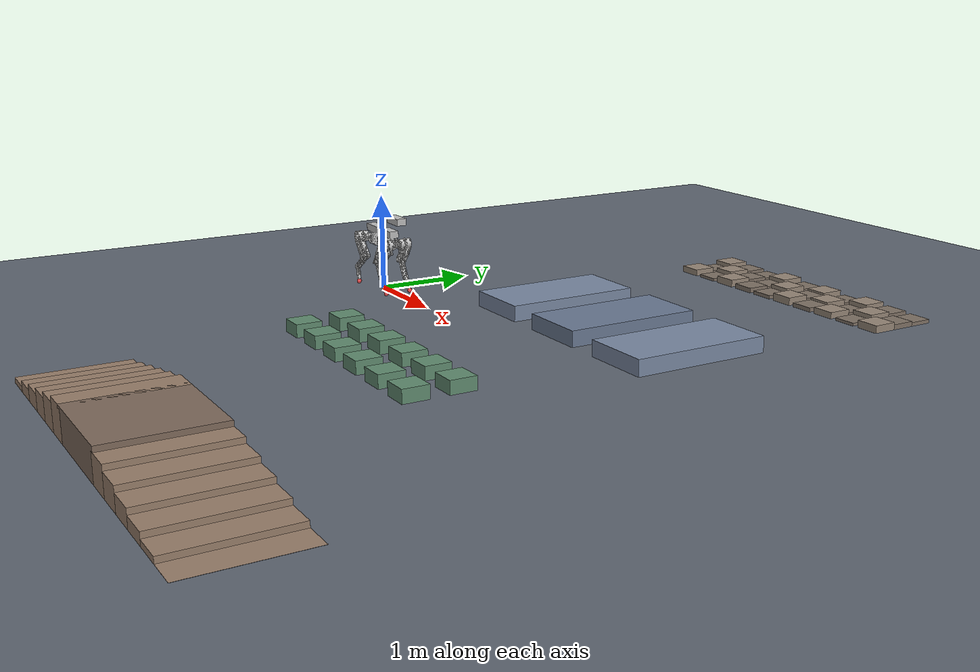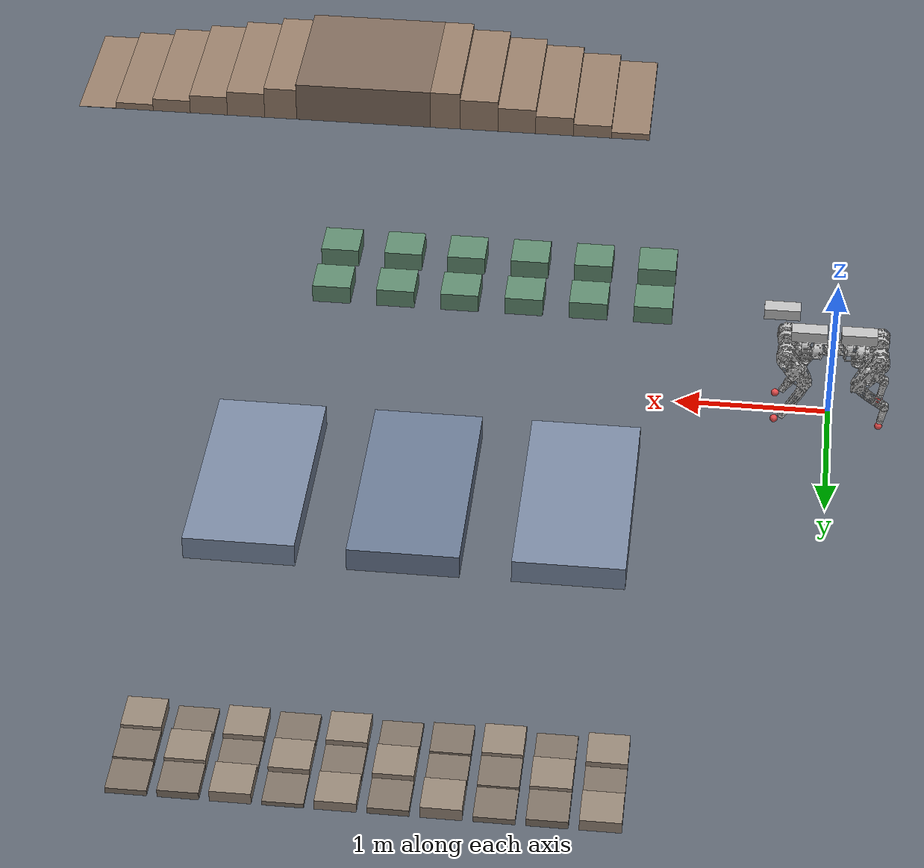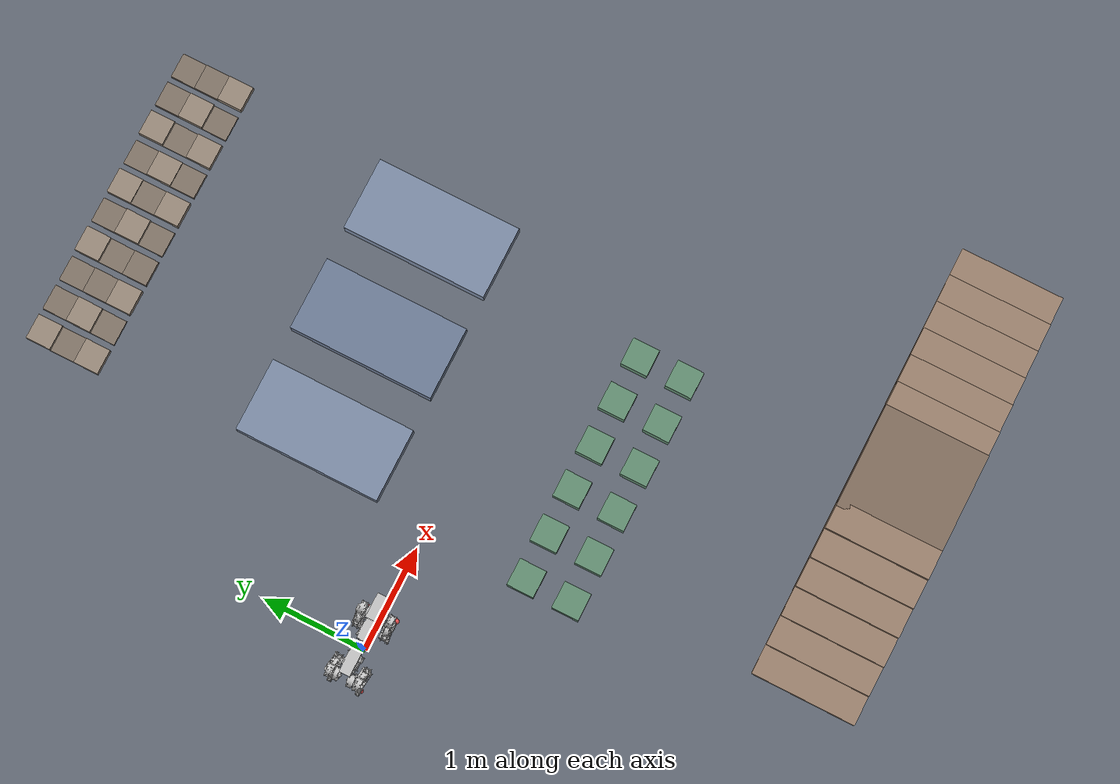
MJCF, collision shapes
<mujoco model="terrain_course4">
  <!-- ★4라인 종합코스(2026-07-15): gap·stepping을 별도 라인 분리 + 험지·계단 복원.
       y=+1.2 갭 / y=-1.2 스테핑(안쪽=도달 쉬움) · y=+3.6 험지 / y=-3.6 계단(바깥). 중앙(y=0)=통로.
       ③ selectFoot walk 0.5로 각 라인 완주. 조향해 라인 진입. -->
  <include file="quad_real_17dof_waist_sphere.mjcf"/>
  <worldbody>
    <!-- 라인 A (y=+1.2): 갭 GAP -->
    <geom name="gp0" type="box" group="2" size="0.350 0.700 0.080" pos="1.550 1.200 0.080" rgba="0.48 0.54 0.64 1"/>
    <geom name="gp1" type="box" group="2" size="0.350 0.700 0.080" pos="2.570 1.200 0.080" rgba="0.42 0.48 0.58 1"/>
    <geom name="gp2" type="box" group="2" size="0.350 0.700 0.080" pos="3.590 1.200 0.080" rgba="0.48 0.54 0.64 1"/>
    <!-- 라인 B (y=-1.2): 스테핑 STEPPING -->
    <geom name="t0L" type="box" group="2" size="0.130 0.130 0.065" pos="1.200 -0.980 0.065" rgba="0.38 0.55 0.44 1"/>
    <geom name="t0R" type="box" group="2" size="0.130 0.130 0.065" pos="1.200 -1.420 0.065" rgba="0.38 0.55 0.44 1"/>
    <geom name="t1L" type="box" group="2" size="0.130 0.130 0.065" pos="1.640 -0.980 0.065" rgba="0.38 0.55 0.44 1"/>
    <geom name="t1R" type="box" group="2" size="0.130 0.130 0.065" pos="1.640 -1.420 0.065" rgba="0.38 0.55 0.44 1"/>
    <geom name="t2L" type="box" group="2" size="0.130 0.130 0.065" pos="2.080 -0.980 0.065" rgba="0.38 0.55 0.44 1"/>
    <geom name="t2R" type="box" group="2" size="0.130 0.130 0.065" pos="2.080 -1.420 0.065" rgba="0.38 0.55 0.44 1"/>
    <geom name="t3L" type="box" group="2" size="0.130 0.130 0.065" pos="2.520 -0.980 0.065" rgba="0.38 0.55 0.44 1"/>
    <geom name="t3R" type="box" group="2" size="0.130 0.130 0.065" pos="2.520 -1.420 0.065" rgba="0.38 0.55 0.44 1"/>
    <geom name="t4L" type="box" group="2" size="0.130 0.130 0.065" pos="2.960 -0.980 0.065" rgba="0.38 0.55 0.44 1"/>
    <geom name="t4R" type="box" group="2" size="0.130 0.130 0.065" pos="2.960 -1.420 0.065" rgba="0.38 0.55 0.44 1"/>
    <geom name="t5L" type="box" group="2" size="0.130 0.130 0.065" pos="3.400 -0.980 0.065" rgba="0.38 0.55 0.44 1"/>
    <geom name="t5R" type="box" group="2" size="0.130 0.130 0.065" pos="3.400 -1.420 0.065" rgba="0.38 0.55 0.44 1"/>
    <!-- 라인 C (y=+3.6): 험지 ROUGH (0.12 요철 그리드, 높이 0.015~0.040) -->
    <geom name="rg0" type="box" group="2" size="0.120 0.120 0.033" pos="1.200 3.360 0.033" rgba="0.59 0.53 0.47 1"/>
    <geom name="rg1" type="box" group="2" size="0.120 0.120 0.015" pos="1.200 3.600 0.015" rgba="0.50 0.45 0.40 1"/>
    <geom name="rg2" type="box" group="2" size="0.120 0.120 0.038" pos="1.200 3.840 0.038" rgba="0.59 0.53 0.47 1"/>
    <geom name="rg3" type="box" group="2" size="0.120 0.120 0.015" pos="1.500 3.360 0.015" rgba="0.50 0.45 0.40 1"/>
    <geom name="rg4" type="box" group="2" size="0.120 0.120 0.038" pos="1.500 3.600 0.038" rgba="0.59 0.53 0.47 1"/>
    <geom name="rg5" type="box" group="2" size="0.120 0.120 0.026" pos="1.500 3.840 0.026" rgba="0.50 0.45 0.40 1"/>
    <geom name="rg6" type="box" group="2" size="0.120 0.120 0.038" pos="1.800 3.360 0.038" rgba="0.59 0.53 0.47 1"/>
    <geom name="rg7" type="box" group="2" size="0.120 0.120 0.026" pos="1.800 3.600 0.026" rgba="0.50 0.45 0.40 1"/>
    <geom name="rg8" type="box" group="2" size="0.120 0.120 0.019" pos="1.800 3.840 0.019" rgba="0.50 0.45 0.40 1"/>
    <geom name="rg9" type="box" group="2" size="0.120 0.120 0.026" pos="2.100 3.360 0.026" rgba="0.50 0.45 0.40 1"/>
    <geom name="rg10" type="box" group="2" size="0.120 0.120 0.019" pos="2.100 3.600 0.019" rgba="0.50 0.45 0.40 1"/>
    <geom name="rg11" type="box" group="2" size="0.120 0.120 0.040" pos="2.100 3.840 0.040" rgba="0.59 0.53 0.47 1"/>
    <geom name="rg12" type="box" group="2" size="0.120 0.120 0.019" pos="2.400 3.360 0.019" rgba="0.50 0.45 0.40 1"/>
    <geom name="rg13" type="box" group="2" size="0.120 0.120 0.040" pos="2.400 3.600 0.040" rgba="0.59 0.53 0.47 1"/>
    <geom name="rg14" type="box" group="2" size="0.120 0.120 0.022" pos="2.400 3.840 0.022" rgba="0.50 0.45 0.40 1"/>
    <geom name="rg15" type="box" group="2" size="0.120 0.120 0.040" pos="2.700 3.360 0.040" rgba="0.59 0.53 0.47 1"/>
    <geom name="rg16" type="box" group="2" size="0.120 0.120 0.022" pos="2.700 3.600 0.022" rgba="0.50 0.45 0.40 1"/>
    <geom name="rg17" type="box" group="2" size="0.120 0.120 0.033" pos="2.700 3.840 0.033" rgba="0.59 0.53 0.47 1"/>
    <geom name="rg18" type="box" group="2" size="0.120 0.120 0.022" pos="3.000 3.360 0.022" rgba="0.50 0.45 0.40 1"/>
    <geom name="rg19" type="box" group="2" size="0.120 0.120 0.033" pos="3.000 3.600 0.033" rgba="0.59 0.53 0.47 1"/>
    <geom name="rg20" type="box" group="2" size="0.120 0.120 0.015" pos="3.000 3.840 0.015" rgba="0.50 0.45 0.40 1"/>
    <geom name="rg21" type="box" group="2" size="0.120 0.120 0.033" pos="3.300 3.360 0.033" rgba="0.59 0.53 0.47 1"/>
    <geom name="rg22" type="box" group="2" size="0.120 0.120 0.015" pos="3.300 3.600 0.015" rgba="0.50 0.45 0.40 1"/>
    <geom name="rg23" type="box" group="2" size="0.120 0.120 0.038" pos="3.300 3.840 0.038" rgba="0.59 0.53 0.47 1"/>
    <geom name="rg24" type="box" group="2" size="0.120 0.120 0.015" pos="3.600 3.360 0.015" rgba="0.50 0.45 0.40 1"/>
    <geom name="rg25" type="box" group="2" size="0.120 0.120 0.038" pos="3.600 3.600 0.038" rgba="0.59 0.53 0.47 1"/>
    <geom name="rg26" type="box" group="2" size="0.120 0.120 0.026" pos="3.600 3.840 0.026" rgba="0.50 0.45 0.40 1"/>
    <geom name="rg27" type="box" group="2" size="0.120 0.120 0.038" pos="3.900 3.360 0.038" rgba="0.59 0.53 0.47 1"/>
    <geom name="rg28" type="box" group="2" size="0.120 0.120 0.026" pos="3.900 3.600 0.026" rgba="0.50 0.45 0.40 1"/>
    <geom name="rg29" type="box" group="2" size="0.120 0.120 0.019" pos="3.900 3.840 0.019" rgba="0.50 0.45 0.40 1"/>
    <!-- 라인 D (y=-3.6): 계단 STAIRS (오르막 6단→랜딩→내리막 6단, 단높이 0.025) -->
    <geom name="sup1" type="box" group="2" size="0.140 0.500 0.025" pos="1.500 -3.600 0.025" rgba="0.60 0.50 0.42 1"/>
    <geom name="sup2" type="box" group="2" size="0.140 0.500 0.050" pos="1.780 -3.600 0.050" rgba="0.60 0.50 0.42 1"/>
    <geom name="sup3" type="box" group="2" size="0.140 0.500 0.075" pos="2.060 -3.600 0.075" rgba="0.60 0.50 0.42 1"/>
    <geom name="sup4" type="box" group="2" size="0.140 0.500 0.100" pos="2.340 -3.600 0.100" rgba="0.60 0.50 0.42 1"/>
    <geom name="sup5" type="box" group="2" size="0.140 0.500 0.125" pos="2.620 -3.600 0.125" rgba="0.60 0.50 0.42 1"/>
    <geom name="sup6" type="box" group="2" size="0.140 0.500 0.150" pos="2.900 -3.600 0.150" rgba="0.60 0.50 0.42 1"/>
    <geom name="sland" type="box" group="2" size="0.500 0.500 0.150" pos="3.480 -3.600 0.150" rgba="0.50 0.42 0.36 1"/>
    <geom name="sdn1" type="box" group="2" size="0.140 0.500 0.126" pos="4.080 -3.600 0.126" rgba="0.60 0.50 0.42 1"/>
    <geom name="sdn2" type="box" group="2" size="0.140 0.500 0.101" pos="4.360 -3.600 0.101" rgba="0.60 0.50 0.42 1"/>
    <geom name="sdn3" type="box" group="2" size="0.140 0.500 0.076" pos="4.640 -3.600 0.076" rgba="0.60 0.50 0.42 1"/>
    <geom name="sdn4" type="box" group="2" size="0.140 0.500 0.051" pos="4.920 -3.600 0.051" rgba="0.60 0.50 0.42 1"/>
    <geom name="sdn5" type="box" group="2" size="0.140 0.500 0.026" pos="5.200 -3.600 0.026" rgba="0.60 0.50 0.42 1"/>
    <geom name="sdn6" type="box" group="2" size="0.140 0.500 0.001" pos="5.480 -3.600 0.001" rgba="0.60 0.50 0.42 1"/>
  </worldbody>
</mujoco>

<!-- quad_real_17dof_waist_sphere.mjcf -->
<mujoco model="02_Leg_UFDF_260703_2">
  <!-- meshdir = MJCF 파일 위치 기준 상대경로. 데스크톱/Pi 양쪽에서 동작(quad_go2*.mjcf 와 동일 규약).
       ※절대경로(/home/jsh/…)는 Pi 에서 로드 실패한다 — 실기 브링업에서 발견(2026-08-05). -->
  <compiler angle="radian" meshdir="../meshes_sim_17dof/" />
  <asset>
    <texture name="floor_tex" type="2d" builtin="checker" rgb1="0.33 0.36 0.40" rgb2="0.42 0.45 0.50" width="512" height="512" />
    <material name="floor_mat" texture="floor_tex" texuniform="true" texrepeat="12 12" reflectance="0.12" />
    <mesh name="Base" content_type="model/stl" file="Base.STL" />
    <mesh name="HL_hip_link" content_type="model/stl" file="HL_hip_link.STL" />
    <mesh name="HL_thigh_link" content_type="model/stl" file="HL_thigh_link.STL" />
    <mesh name="HL_calf_link" content_type="model/stl" file="HL_calf_link.STL" />
    <mesh name="HL_foot_link" content_type="model/stl" file="HL_foot_link.STL" />
    <mesh name="HL_foot_contact_link" content_type="model/stl" file="HL_foot_contact_link.STL" />
    <mesh name="HR_hip_link" content_type="model/stl" file="HR_hip_link.STL" />
    <mesh name="HR_thigh_link" content_type="model/stl" file="HR_thigh_link.STL" />
    <mesh name="HR_calf_link" content_type="model/stl" file="HR_calf_link.STL" />
    <mesh name="HR_foot_link" content_type="model/stl" file="HR_foot_link.STL" />
    <mesh name="HR_foot_contact_link" content_type="model/stl" file="HR_foot_contact_link.STL" />
    <mesh name="FB_waist_link" content_type="model/stl" file="FB_waist_link.STL" />
    <mesh name="FL_hip_link" content_type="model/stl" file="FL_hip_link.STL" />
    <mesh name="FL_thigh_link" content_type="model/stl" file="FL_thigh_link.STL" />
    <mesh name="FL_calf_link" content_type="model/stl" file="FL_calf_link.STL" />
    <mesh name="FL_foot_link" content_type="model/stl" file="FL_foot_link.STL" />
    <mesh name="FL_foot_contact_link" content_type="model/stl" file="FL_foot_contact_link.STL" />
    <mesh name="FR_hip_link" content_type="model/stl" file="FR_hip_link.STL" />
    <mesh name="FR_thigh_link" content_type="model/stl" file="FR_thigh_link.STL" />
    <mesh name="FR_calf_link" content_type="model/stl" file="FR_calf_link.STL" />
    <mesh name="FR_foot_link" content_type="model/stl" file="FR_foot_link.STL" />
    <mesh name="FR_foot_contact_link" content_type="model/stl" file="FR_foot_contact_link.STL" />
  </asset>
  <worldbody>
    <body name="Base" pos="0 0 0.5235">
      <freejoint name="root" />
      <inertial pos="-0.12954 -4.9268e-06 0.045617" quat="0.000189274 0.707107 -0.000482779 0.707107" mass="7.4" diaginertia="0.011565 0.010565 0.0059454" />
      <geom type="mesh" contype="0" conaffinity="0" group="1" density="0" rgba="0.75294 0.75294 0.75294 1" mesh="Base" />
      <geom type="mesh" rgba="0.75294 0.75294 0.75294 1" mesh="Base" />
      <body name="HL_hip_link" pos="-0.301 0.0225 0">
        <inertial pos="0.026196 0.039035 -5.8825e-05" quat="0.727698 -1.12194e-05 -8.00771e-06 0.685898" mass="1.3" diaginertia="0.000788485 0.000555085 0.00044966" />
        <joint name="HL_hip_joint" pos="0 0 0" axis="1 0 0" range="-0.349 0.349" actuatorfrcrange="-84 84" />
        <geom type="mesh" contype="0" conaffinity="0" group="1" density="0" rgba="0.75294 0.75294 0.75294 1" mesh="HL_hip_link" />
        <geom type="mesh" rgba="0.75294 0.75294 0.75294 1" mesh="HL_hip_link" />
        <body name="HL_thigh_link" pos="0 0.115 0">
          <inertial pos="0.055149 0.00079282 -0.077079" quat="0.674237 -0.213238 -0.213149 0.674167" mass="3.1" diaginertia="0.005605 0.00436141 0.00134769" />
          <joint name="HL_thigh_joint" pos="0 0 0" axis="0 1 0" range="-2.356 1.134" actuatorfrcrange="-84 84" />
          <geom type="mesh" contype="0" conaffinity="0" group="1" density="0" rgba="0.75294 0.75294 0.75294 1" mesh="HL_thigh_link" />
          <geom type="mesh" rgba="0.75294 0.75294 0.75294 1" mesh="HL_thigh_link" />
          <body name="HL_calf_link" pos="0.13192 0 -0.1884">
            <inertial pos="-0.071593 0.000126754 -0.0633446" quat="0.641055 0.29841 0.29841 0.641055" mass="0.595204" diaginertia="0.00243273 0.00232033 0.000138271" />
            <joint name="HL_calf_joint" pos="0 0 0" axis="0 1 0" range="-0.959 1.134" actuatorfrcrange="-126 126" />
            <geom type="mesh" contype="0" conaffinity="0" group="1" density="0" rgba="0.752941 0.752941 0.752941 1" mesh="HL_calf_link" />
            <geom type="mesh" rgba="0.752941 0.752941 0.752941 1" mesh="HL_calf_link" />
            <body name="HL_foot_link" pos="-0.18768 0 -0.15748">
              <inertial pos="0.0105929 -7.89238e-12 -0.0600756" quat="0.704415 -0.0616285 -0.0616283 0.704417" mass="0.202619" diaginertia="0.000300644 0.000274237 3.03295e-05" />
              <joint name="HL_foot_joint" pos="0 0 0" axis="0 1 0" range="-1.396 0.698" actuatorfrcrange="-100.8 100.8" />
              <geom type="mesh" contype="0" conaffinity="0" group="1" density="0" rgba="0.752941 0.752941 0.752941 1" mesh="HL_foot_link" />
              <geom type="mesh" rgba="0.752941 0.752941 0.752941 1" mesh="HL_foot_link" />
              <body name="HL_foot_contact_link" pos="0.0277837 0 -0.157569">
                <inertial pos="-0.000131235 1.07253e-10 0.000744242" quat="0.541675 0.45452 0.45452 0.541675" mass="0.0375462" diaginertia="1.07022e-05 8.08626e-06 7.24966e-06" />
                <geom type="mesh" contype="0" conaffinity="0" group="1" density="0" rgba="1 1 1 1" mesh="HL_foot_contact_link" />
                <geom type="mesh" rgba="1 1 1 1" mesh="HL_foot_contact_link" contype="0" conaffinity="0" />
                <geom name="HL_sphere" type="sphere" size="0.025" pos="0 0 0" rgba="0.9 0.3 0.3 1" friction="1.3 0.02 0.001" condim="3" />
              </body>
            </body>
          </body>
        </body>
      </body>
      <body name="HR_hip_link" pos="-0.301 -0.0225 0">
        <inertial pos="0.044964 -0.03664 4.8852e-05" quat="0.704132 9.93157e-06 1.28479e-05 0.710069" mass="1.4" diaginertia="0.000818289 0.000551961 0.00046473" />
        <joint name="HR_hip_joint" pos="0 0 0" axis="1 0 0" range="-0.349 0.349" actuatorfrcrange="-84 84" />
        <geom type="mesh" contype="0" conaffinity="0" group="1" density="0" rgba="0.75294 0.75294 0.75294 1" mesh="HR_hip_link" />
        <geom type="mesh" rgba="0.75294 0.75294 0.75294 1" mesh="HR_hip_link" />
        <body name="HR_thigh_link" pos="0 -0.115 0">
          <inertial pos="0.053568 -0.00079281 -0.078186" quat="0.674558 -0.212019 -0.212132 0.674552" mass="3.1" diaginertia="0.005605 0.00436143 0.00134767" />
          <joint name="HR_thigh_joint" pos="0 0 0" axis="0 1 0" range="-2.356 1.134" actuatorfrcrange="-84 84" />
          <geom type="mesh" contype="0" conaffinity="0" group="1" density="0" rgba="0.75294 0.75294 0.75294 1" mesh="HR_thigh_link" />
          <geom type="mesh" rgba="0.75294 0.75294 0.75294 1" mesh="HR_thigh_link" />
          <body name="HR_calf_link" pos="0.13192 0 -0.1884">
            <inertial pos="-0.071593 -0.000124046 -0.0633446" quat="0.641055 0.29841 0.29841 0.641055" mass="0.595204" diaginertia="0.00243273 0.00232033 0.000138271" />
            <joint name="HR_calf_joint" pos="0 0 0" axis="0 1 0" range="-0.959 1.134" actuatorfrcrange="-126 126" />
            <geom type="mesh" contype="0" conaffinity="0" group="1" density="0" rgba="0.752941 0.752941 0.752941 1" mesh="HR_calf_link" />
            <geom type="mesh" rgba="0.752941 0.752941 0.752941 1" mesh="HR_calf_link" />
            <body name="HR_foot_link" pos="-0.187681 0 -0.157483">
              <inertial pos="0.0105929 -7.89188e-12 -0.0600756" quat="0.704415 -0.0616285 -0.0616283 0.704417" mass="0.202619" diaginertia="0.000300644 0.000274237 3.03295e-05" />
              <joint name="HR_foot_joint" pos="0 0 0" axis="0 1 0" range="-1.396 0.698" actuatorfrcrange="-100.8 100.8" />
              <geom type="mesh" contype="0" conaffinity="0" group="1" density="0" rgba="0.752941 0.752941 0.752941 1" mesh="HR_foot_link" />
              <geom type="mesh" rgba="0.752941 0.752941 0.752941 1" mesh="HR_foot_link" />
              <body name="HR_foot_contact_link" pos="0.0277837 0 -0.157569">
                <inertial pos="-0.000131235 1.07254e-10 0.000744242" quat="0.541675 0.45452 0.45452 0.541675" mass="0.0375462" diaginertia="1.07022e-05 8.08626e-06 7.24966e-06" />
                <geom type="mesh" contype="0" conaffinity="0" group="1" density="0" rgba="1 1 1 1" mesh="HR_foot_contact_link" />
                <geom type="mesh" rgba="1 1 1 1" mesh="HR_foot_contact_link" contype="0" conaffinity="0" />
                <geom name="HR_sphere" type="sphere" size="0.025" pos="0 0 0" rgba="0.9 0.3 0.3 1" friction="1.3 0.02 0.001" condim="3" />
              </body>
            </body>
          </body>
        </body>
      </body>
      <body name="FB_waist_link">
        <inertial pos="0.21128 1.2507e-05 0.12655" quat="0.00014397 0.706912 -0.000145167 0.707302" mass="9.5" diaginertia="0.019743 0.018424 0.00768869" />
        <joint name="FB_waist_joint" pos="0 0 0" axis="0 0 1" range="-0.7854 0.7854" actuatorfrcrange="-84 84" />
        <geom type="mesh" contype="0" conaffinity="0" group="1" density="0" rgba="0.75294 0.75294 0.75294 1" mesh="FB_waist_link" />
        <geom type="mesh" rgba="0.75294 0.75294 0.75294 1" mesh="FB_waist_link" />
        <body name="FL_hip_link" pos="0.299 0.0225 0">
          <inertial pos="-0.044964 0.03664 4.8852e-05" quat="0.704132 -9.93157e-06 -1.28479e-05 0.710069" mass="1.3" diaginertia="0.000818289 0.000551961 0.00046473" />
          <joint name="FL_hip_joint" pos="0 0 0" axis="1 0 0" range="-0.349 0.349" actuatorfrcrange="-84 84" />
          <geom type="mesh" contype="0" conaffinity="0" group="1" density="0" rgba="0.75294 0.75294 0.75294 1" mesh="FL_hip_link" />
          <geom type="mesh" rgba="0.75294 0.75294 0.75294 1" mesh="FL_hip_link" />
          <body name="FL_thigh_link" pos="0 0.115 0">
            <inertial pos="-0.053568 0.00079281 -0.078186" quat="0.674558 0.212019 0.212132 0.674552" mass="3.1" diaginertia="0.005605 0.00436143 0.00134767" />
            <joint name="FL_thigh_joint" pos="0 0 0" axis="0 1 0" range="-2.705 1.309" actuatorfrcrange="-84 84" />   <!-- ★앞 thigh limit 양방향 +15°(0.262rad) 확장(원본 -2.443~1.047): 눕기 저자세서 앞다리 세움 여유. 실기 스펙 여유 확인 필요 -->
            <geom type="mesh" contype="0" conaffinity="0" group="1" density="0" rgba="0.75294 0.75294 0.75294 1" mesh="FL_thigh_link" />
            <geom type="mesh" rgba="0.75294 0.75294 0.75294 1" mesh="FL_thigh_link" />
            <body name="FL_calf_link" pos="-0.13192 -0.275 -0.1884">
              <inertial pos="0.0381147 0.275124 -0.0876662" quat="0.690447 -0.152587 -0.152587 0.690447" mass="0.595204" diaginertia="0.00243273 0.00232033 0.000138271" />
              <joint name="FL_calf_joint" pos="0 0 0" axis="0 1 0" range="-1.221 0.785" actuatorfrcrange="-126 126" />
              <geom type="mesh" contype="0" conaffinity="0" group="1" density="0" rgba="0.752941 0.752941 0.752941 1" mesh="FL_calf_link" />
              <geom type="mesh" rgba="0.752941 0.752941 0.752941 1" mesh="FL_calf_link" />
              <body name="FL_foot_link" pos="0.10354 0.275 -0.22205">
                <inertial pos="0.0165092 -1.18803e-11 -0.0285948" quat="0.683002 -0.183015 -0.18301 0.683023" mass="0.135769" diaginertia="8.92406e-05 7.12696e-05 2.11402e-05" />
                <joint name="FL_foot_joint" pos="0 0 0" axis="0 1 0" range="-0.785 1.571" actuatorfrcrange="-100.8 100.8" />
                <geom type="mesh" contype="0" conaffinity="0" group="1" density="0" rgba="0.752941 0.752941 0.752941 1" mesh="FL_foot_link" />
                <geom type="mesh" rgba="0.752941 0.752941 0.752941 1" mesh="FL_foot_link" />
                <body name="FL_foot_contact_link" pos="0.079064 0 -0.0871429">
                  <inertial pos="-0.00627719 -9.99837e-05 0.00215514" quat="0.531362 0.466535 0.466508 0.531385" mass="0.0917377" diaginertia="4.39469e-05 4.3319e-05 2.23667e-05" />
                  <geom type="mesh" contype="0" conaffinity="0" group="1" density="0" rgba="1 1 1 1" mesh="FL_foot_contact_link" />
                  <geom type="mesh" rgba="1 1 1 1" mesh="FL_foot_contact_link" contype="0" conaffinity="0" />
                  <geom name="FL_sphere" type="sphere" size="0.025" pos="0 0 0" rgba="0.9 0.3 0.3 1" friction="1.3 0.02 0.001" condim="3" />
                </body>
              </body>
            </body>
          </body>
        </body>
        <body name="FR_hip_link" pos="0.299 -0.0225 0">
          <inertial pos="-0.026196 -0.039035 -5.8825e-05" quat="0.727698 1.12194e-05 8.00771e-06 0.685898" mass="1.4" diaginertia="0.000788485 0.000555085 0.00044966" />
          <joint name="FR_hip_joint" pos="0 0 0" axis="1 0 0" range="-0.349 0.349" actuatorfrcrange="-84 84" />
          <geom type="mesh" contype="0" conaffinity="0" group="1" density="0" rgba="0.75294 0.75294 0.75294 1" mesh="FR_hip_link" />
          <geom type="mesh" rgba="0.75294 0.75294 0.75294 1" mesh="FR_hip_link" />
          <body name="FR_thigh_link" pos="0 -0.115 0">
            <inertial pos="-0.055149 -0.00079282 -0.077079" quat="0.674237 0.213238 0.213149 0.674167" mass="3.1" diaginertia="0.005605 0.00436141 0.00134769" />
            <joint name="FR_thigh_joint" pos="0 0 0" axis="0 1 0" range="-2.705 1.309" actuatorfrcrange="-84 84" />   <!-- ★앞 thigh limit 양방향 +15°(0.262rad) 확장(원본 -2.443~1.047): 눕기 저자세서 앞다리 세움 여유. 실기 스펙 여유 확인 필요 -->
            <geom type="mesh" contype="0" conaffinity="0" group="1" density="0" rgba="0.75294 0.75294 0.75294 1" mesh="FR_thigh_link" />
            <geom type="mesh" rgba="0.75294 0.75294 0.75294 1" mesh="FR_thigh_link" />
            <body name="FR_calf_link" pos="-0.13192 0 -0.1884">
              <inertial pos="0.0381147 -0.000126754 -0.0876662" quat="0.690447 -0.152587 -0.152587 0.690447" mass="0.595204" diaginertia="0.00243273 0.00232033 0.000138271" />
              <joint name="FR_calf_joint" pos="0 0 0" axis="0 1 0" range="-1.221 0.785" actuatorfrcrange="-126 126" />
              <geom type="mesh" contype="0" conaffinity="0" group="1" density="0" rgba="0.752941 0.752941 0.752941 1" mesh="FR_calf_link" />
              <geom type="mesh" rgba="0.752941 0.752941 0.752941 1" mesh="FR_calf_link" />
              <body name="FR_foot_link" pos="0.10354 0 -0.22205">
                <inertial pos="0.0165092 -1.18804e-11 -0.0285948" quat="0.683002 -0.183015 -0.18301 0.683023" mass="0.135769" diaginertia="8.92406e-05 7.12696e-05 2.11402e-05" />
                <joint name="FR_foot_joint" pos="0 0 0" axis="0 1 0" range="-0.785 1.571" actuatorfrcrange="-100.8 100.8" />
                <geom type="mesh" contype="0" conaffinity="0" group="1" density="0" rgba="0.752941 0.752941 0.752941 1" mesh="FR_foot_link" />
                <geom type="mesh" rgba="0.752941 0.752941 0.752941 1" mesh="FR_foot_link" />
                <body name="FR_foot_contact_link" pos="0.079064 0 -0.0871429">
                  <inertial pos="-0.00627719 -9.99837e-05 0.00215514" quat="0.531362 0.466535 0.466508 0.531385" mass="0.0917377" diaginertia="4.39469e-05 4.3319e-05 2.23667e-05" />
                  <geom type="mesh" contype="0" conaffinity="0" group="1" density="0" rgba="1 1 1 1" mesh="FR_foot_contact_link" />
                  <geom type="mesh" rgba="1 1 1 1" mesh="FR_foot_contact_link" contype="0" conaffinity="0" />
                  <geom name="FR_sphere" type="sphere" size="0.025" pos="0 0 0" rgba="0.9 0.3 0.3 1" friction="1.3 0.02 0.001" condim="3" />
                </body>
              </body>
            </body>
          </body>
        </body>
      </body>
    </body>
    <geom name="floor" type="plane" size="0 0 0.1" material="floor_mat" />   <!-- ★size 0 0 = 무한 평면(체커 무한 타일). texuniform=true라 world 단위로 타일 -->

    <light pos="0 0 3" dir="0 0 -1" />
  </worldbody>
  <option timestep="0.002" gravity="0 0 -9.81" />
  <default>
    <geom friction="1.3 0.02 0.001" condim="3" solref="0.03 1" solimp="0.9 0.95 0.001" />   <!-- ★소프트 접촉(compliant 바닥, solref 0.02→0.03=발 착지 완충). 배포 회귀 확인 -->
    <motor ctrllimited="true" ctrlrange="-200 200" />
  </default>
  <actuator>
    <motor joint="HL_hip_joint" name="HL_hip" />
    <motor joint="HL_thigh_joint" name="HL_thigh" />
    <motor joint="HL_calf_joint" name="HL_calf" />
    <motor joint="HL_foot_joint" name="HL_foot" />
    <motor joint="HR_hip_joint" name="HR_hip" />
    <motor joint="HR_thigh_joint" name="HR_thigh" />
    <motor joint="HR_calf_joint" name="HR_calf" />
    <motor joint="HR_foot_joint" name="HR_foot" />
    <motor joint="FB_waist_joint" name="FB_waist" />
    <motor joint="FL_hip_joint" name="FL_hip" />
    <motor joint="FL_thigh_joint" name="FL_thigh" />
    <motor joint="FL_calf_joint" name="FL_calf" />
    <motor joint="FL_foot_joint" name="FL_foot" />
    <motor joint="FR_hip_joint" name="FR_hip" />
    <motor joint="FR_thigh_joint" name="FR_thigh" />
    <motor joint="FR_calf_joint" name="FR_calf" />
    <motor joint="FR_foot_joint" name="FR_foot" />
  </actuator>
</mujoco>
